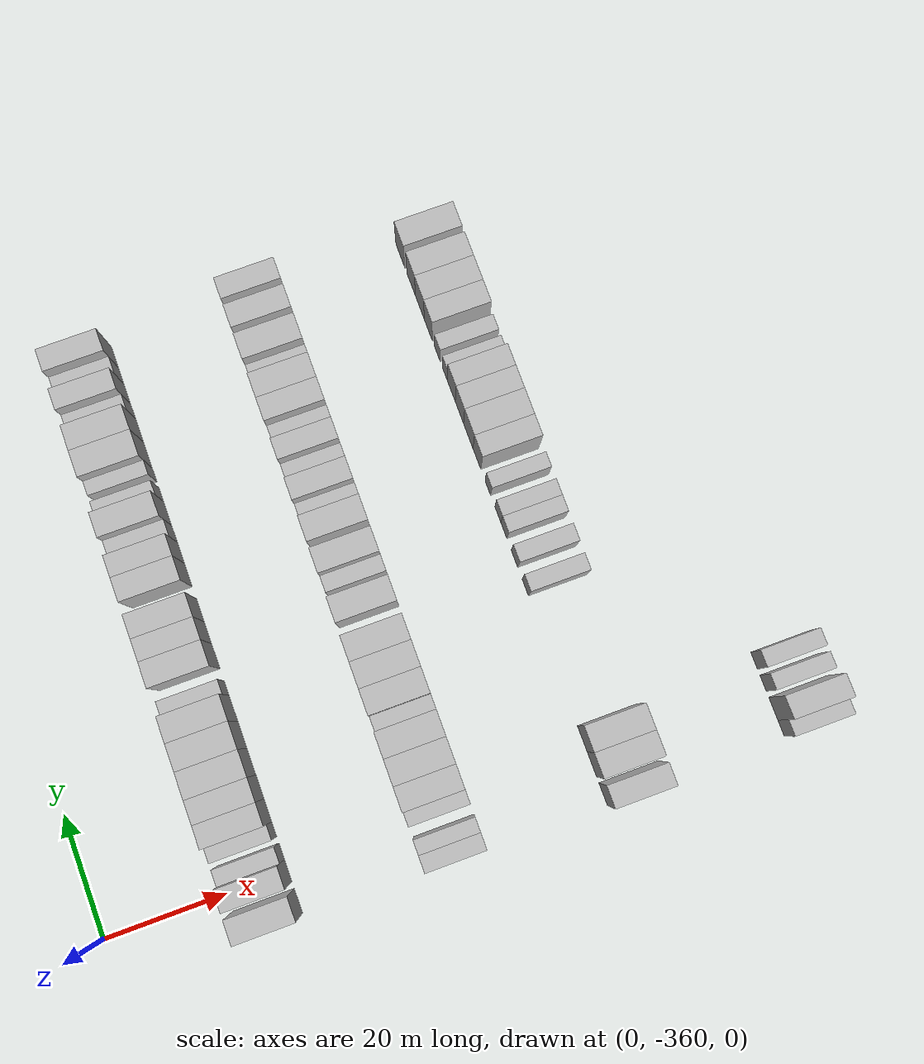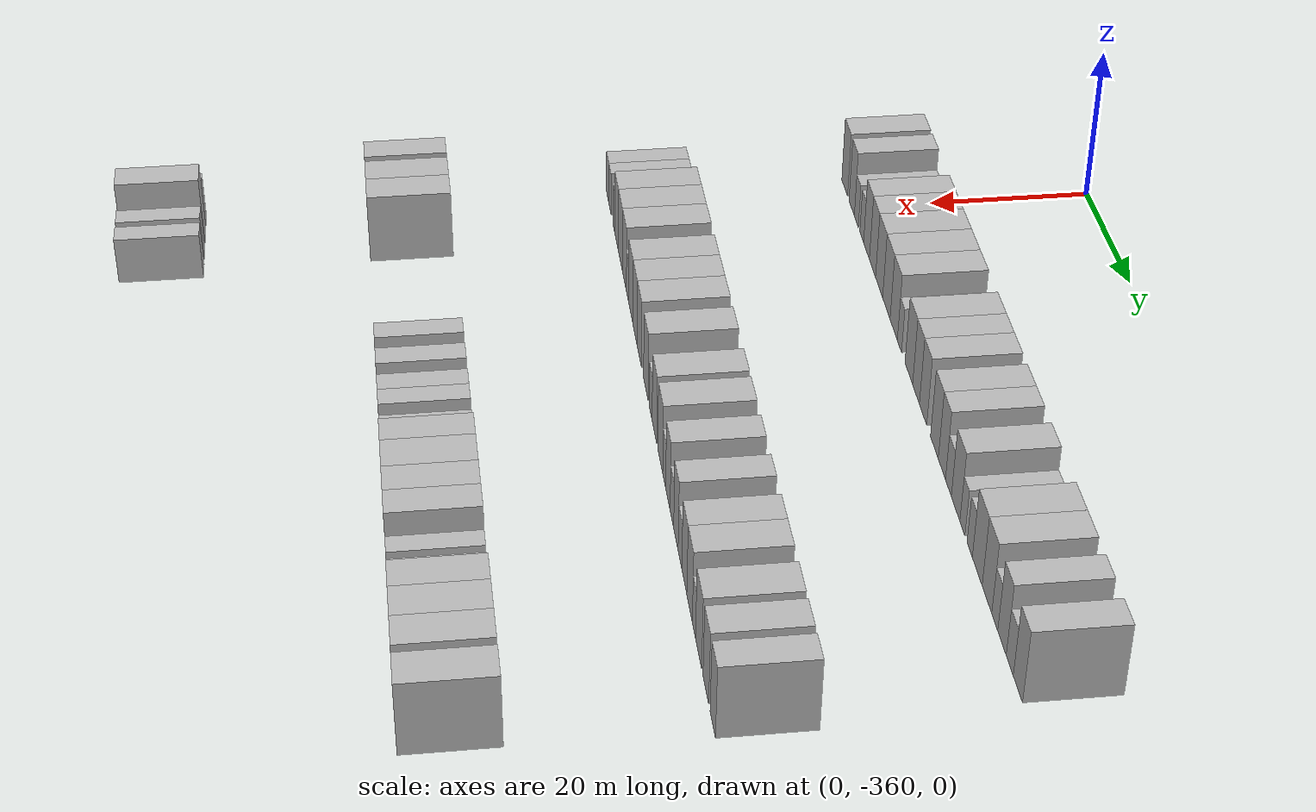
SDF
<sdf version="1.6">
 <world name="default">
  <model name="building_24">
   <static>1</static>
   <pose>25.0000 -364.7935 0 0.000000 0.000000 0.000000</pose>
   <link name="link">
    <pose>0 0 4.50 0 0 0</pose>
    <collision name="collision"><geometry><box><size>10.0000 3.9919 9.0000</size></box></geometry></collision>
    <visual name="visual">
     <cast_shadows>0</cast_shadows>
     <geometry><box><size>10.0000 3.9919 9.0000</size></box></geometry>
     <material>
      <script>
       <uri>model://HANNAS_wall/materials/scripts</uri>
       <uri>model://HANNAS_wall/materials/textures</uri>
       <name>vrc/HANNAS_wall</name>
      </script>
     </material>
    </visual>
   </link>
  </model>
  <model name="building_25">
   <static>1</static>
   <pose>25.0000 -359.9944 0 0.000000 0.000000 0.000000</pose>
   <link name="link">
    <pose>0 0 4.50 0 0 0</pose>
    <collision name="collision"><geometry><box><size>10.0000 3.6062 9.0000</size></box></geometry></collision>
    <visual name="visual">
     <cast_shadows>0</cast_shadows>
     <geometry><box><size>10.0000 3.6062 9.0000</size></box></geometry>
     <material>
      <script>
       <uri>model://HANNAS_wall/materials/scripts</uri>
       <uri>model://HANNAS_wall/materials/textures</uri>
       <name>vrc/HANNAS_wall</name>
      </script>
     </material>
    </visual>
   </link>
  </model>
  <model name="building_26">
   <static>1</static>
   <pose>25.0000 -356.8603 0 0.000000 0.000000 0.000000</pose>
   <link name="link">
    <pose>0 0 3.00 0 0 0</pose>
    <collision name="collision"><geometry><box><size>10.0000 2.6620 6.0000</size></box></geometry></collision>
    <visual name="visual">
     <cast_shadows>0</cast_shadows>
     <geometry><box><size>10.0000 2.6620 6.0000</size></box></geometry>
     <material>
      <script>
       <uri>model://HANNAS_wall/materials/scripts</uri>
       <uri>model://HANNAS_wall/materials/textures</uri>
       <name>vrc/HANNAS_wall</name>
      </script>
     </material>
    </visual>
   </link>
  </model>
  <model name="building_27">
   <static>1</static>
   <pose>25.0000 -353.3036 0 0.000000 0.000000 0.000000</pose>
   <link name="link">
    <pose>0 0 3.00 0 0 0</pose>
    <collision name="collision"><geometry><box><size>10.0000 2.4513 6.0000</size></box></geometry></collision>
    <visual name="visual">
     <cast_shadows>0</cast_shadows>
     <geometry><box><size>10.0000 2.4513 6.0000</size></box></geometry>
     <material>
      <script>
       <uri>model://HANNAS_wall/materials/scripts</uri>
       <uri>model://HANNAS_wall/materials/textures</uri>
       <name>vrc/HANNAS_wall</name>
      </script>
     </material>
    </visual>
   </link>
  </model>
  <model name="building_28">
   <static>1</static>
   <pose>25.0000 -350.2031 0 0.000000 0.000000 0.000000</pose>
   <link name="link">
    <pose>0 0 4.50 0 0 0</pose>
    <collision name="collision"><geometry><box><size>10.0000 3.7497 9.0000</size></box></geometry></collision>
    <visual name="visual">
     <cast_shadows>0</cast_shadows>
     <geometry><box><size>10.0000 3.7497 9.0000</size></box></geometry>
     <material>
      <script>
       <uri>model://HANNAS_wall/materials/scripts</uri>
       <uri>model://HANNAS_wall/materials/textures</uri>
       <name>vrc/HANNAS_wall</name>
      </script>
     </material>
    </visual>
   </link>
  </model>
  <model name="building_29">
   <static>1</static>
   <pose>25.0000 -346.3788 0 0.000000 0.000000 0.000000</pose>
   <link name="link">
    <pose>0 0 4.50 0 0 0</pose>
    <collision name="collision"><geometry><box><size>10.0000 3.8989 9.0000</size></box></geometry></collision>
    <visual name="visual">
     <cast_shadows>0</cast_shadows>
     <geometry><box><size>10.0000 3.8989 9.0000</size></box></geometry>
     <material>
      <script>
       <uri>model://HANNAS_wall/materials/scripts</uri>
       <uri>model://HANNAS_wall/materials/textures</uri>
       <name>vrc/HANNAS_wall</name>
      </script>
     </material>
    </visual>
   </link>
  </model>
  <model name="building_30">
   <static>1</static>
   <pose>25.0000 -342.2293 0 0.000000 0.000000 0.000000</pose>
   <link name="link">
    <pose>0 0 4.50 0 0 0</pose>
    <collision name="collision"><geometry><box><size>10.0000 4.4001 9.0000</size></box></geometry></collision>
    <visual name="visual">
     <cast_shadows>0</cast_shadows>
     <geometry><box><size>10.0000 4.4001 9.0000</size></box></geometry>
     <material>
      <script>
       <uri>model://HANNAS_wall/materials/scripts</uri>
       <uri>model://HANNAS_wall/materials/textures</uri>
       <name>vrc/HANNAS_wall</name>
      </script>
     </material>
    </visual>
   </link>
  </model>
  <model name="building_31">
   <static>1</static>
   <pose>25.0000 -337.7817 0 0.000000 0.000000 0.000000</pose>
   <link name="link">
    <pose>0 0 4.50 0 0 0</pose>
    <collision name="collision"><geometry><box><size>10.0000 4.4951 9.0000</size></box></geometry></collision>
    <visual name="visual">
     <cast_shadows>0</cast_shadows>
     <geometry><box><size>10.0000 4.4951 9.0000</size></box></geometry>
     <material>
      <script>
       <uri>model://HANNAS_wall/materials/scripts</uri>
       <uri>model://HANNAS_wall/materials/textures</uri>
       <name>vrc/HANNAS_wall</name>
      </script>
     </material>
    </visual>
   </link>
  </model>
  <model name="building_32">
   <static>1</static>
   <pose>25.0000 -333.3863 0 0.000000 0.000000 0.000000</pose>
   <link name="link">
    <pose>0 0 4.50 0 0 0</pose>
    <collision name="collision"><geometry><box><size>10.0000 4.2958 9.0000</size></box></geometry></collision>
    <visual name="visual">
     <cast_shadows>0</cast_shadows>
     <geometry><box><size>10.0000 4.2958 9.0000</size></box></geometry>
     <material>
      <script>
       <uri>model://HANNAS_wall/materials/scripts</uri>
       <uri>model://HANNAS_wall/materials/textures</uri>
       <name>vrc/HANNAS_wall</name>
      </script>
     </material>
    </visual>
   </link>
  </model>
  <model name="building_33">
   <static>1</static>
   <pose>25.0000 -330.0188 0 0.000000 0.000000 0.000000</pose>
   <link name="link">
    <pose>0 0 3.00 0 0 0</pose>
    <collision name="collision"><geometry><box><size>10.0000 2.4390 6.0000</size></box></geometry></collision>
    <visual name="visual">
     <cast_shadows>0</cast_shadows>
     <geometry><box><size>10.0000 2.4390 6.0000</size></box></geometry>
     <material>
      <script>
       <uri>model://HANNAS_wall/materials/scripts</uri>
       <uri>model://HANNAS_wall/materials/textures</uri>
       <name>vrc/HANNAS_wall</name>
      </script>
     </material>
    </visual>
   </link>
  </model>
  <model name="building_34">
   <static>1</static>
   <pose>25.0000 -324.6767 0 0.000000 0.000000 0.000000</pose>
   <link name="link">
    <pose>0 0 4.50 0 0 0</pose>
    <collision name="collision"><geometry><box><size>10.0000 4.2452 9.0000</size></box></geometry></collision>
    <visual name="visual">
     <cast_shadows>0</cast_shadows>
     <geometry><box><size>10.0000 4.2452 9.0000</size></box></geometry>
     <material>
      <script>
       <uri>model://HANNAS_wall/materials/scripts</uri>
       <uri>model://HANNAS_wall/materials/textures</uri>
       <name>vrc/HANNAS_wall</name>
      </script>
     </material>
    </visual>
   </link>
  </model>
  <model name="building_35">
   <static>1</static>
   <pose>25.0000 -320.6942 0 0.000000 0.000000 0.000000</pose>
   <link name="link">
    <pose>0 0 4.50 0 0 0</pose>
    <collision name="collision"><geometry><box><size>10.0000 3.7198 9.0000</size></box></geometry></collision>
    <visual name="visual">
     <cast_shadows>0</cast_shadows>
     <geometry><box><size>10.0000 3.7198 9.0000</size></box></geometry>
     <material>
      <script>
       <uri>model://HANNAS_wall/materials/scripts</uri>
       <uri>model://HANNAS_wall/materials/textures</uri>
       <name>vrc/HANNAS_wall</name>
      </script>
     </material>
    </visual>
   </link>
  </model>
  <model name="building_36">
   <static>1</static>
   <pose>25.0000 -316.8547 0 0.000000 0.000000 0.000000</pose>
   <link name="link">
    <pose>0 0 4.50 0 0 0</pose>
    <collision name="collision"><geometry><box><size>10.0000 3.9591 9.0000</size></box></geometry></collision>
    <visual name="visual">
     <cast_shadows>0</cast_shadows>
     <geometry><box><size>10.0000 3.9591 9.0000</size></box></geometry>
     <material>
      <script>
       <uri>model://HANNAS_wall/materials/scripts</uri>
       <uri>model://HANNAS_wall/materials/textures</uri>
       <name>vrc/HANNAS_wall</name>
      </script>
     </material>
    </visual>
   </link>
  </model>
  <model name="building_37">
   <static>1</static>
   <pose>25.0000 -310.8649 0 0.000000 0.000000 0.000000</pose>
   <link name="link">
    <pose>0 0 4.50 0 0 0</pose>
    <collision name="collision"><geometry><box><size>10.0000 4.0205 9.0000</size></box></geometry></collision>
    <visual name="visual">
     <cast_shadows>0</cast_shadows>
     <geometry><box><size>10.0000 4.0205 9.0000</size></box></geometry>
     <material>
      <script>
       <uri>model://HANNAS_wall/materials/scripts</uri>
       <uri>model://HANNAS_wall/materials/textures</uri>
       <name>vrc/HANNAS_wall</name>
      </script>
     </material>
    </visual>
   </link>
  </model>
  <model name="building_38">
   <static>1</static>
   <pose>25.0000 -307.0264 0 0.000000 0.000000 0.000000</pose>
   <link name="link">
    <pose>0 0 4.50 0 0 0</pose>
    <collision name="collision"><geometry><box><size>10.0000 3.6566 9.0000</size></box></geometry></collision>
    <visual name="visual">
     <cast_shadows>0</cast_shadows>
     <geometry><box><size>10.0000 3.6566 9.0000</size></box></geometry>
     <material>
      <script>
       <uri>model://HANNAS_wall/materials/scripts</uri>
       <uri>model://HANNAS_wall/materials/textures</uri>
       <name>vrc/HANNAS_wall</name>
      </script>
     </material>
    </visual>
   </link>
  </model>
  <model name="building_39">
   <static>1</static>
   <pose>25.0000 -303.7442 0 0.000000 0.000000 0.000000</pose>
   <link name="link">
    <pose>0 0 3.00 0 0 0</pose>
    <collision name="collision"><geometry><box><size>10.0000 2.9078 6.0000</size></box></geometry></collision>
    <visual name="visual">
     <cast_shadows>0</cast_shadows>
     <geometry><box><size>10.0000 2.9078 6.0000</size></box></geometry>
     <material>
      <script>
       <uri>model://HANNAS_wall/materials/scripts</uri>
       <uri>model://HANNAS_wall/materials/textures</uri>
       <name>vrc/HANNAS_wall</name>
      </script>
     </material>
    </visual>
   </link>
  </model>
  <model name="building_40">
   <static>1</static>
   <pose>25.0000 -300.1988 0 0.000000 0.000000 0.000000</pose>
   <link name="link">
    <pose>0 0 4.50 0 0 0</pose>
    <collision name="collision"><geometry><box><size>10.0000 4.1829 9.0000</size></box></geometry></collision>
    <visual name="visual">
     <cast_shadows>0</cast_shadows>
     <geometry><box><size>10.0000 4.1829 9.0000</size></box></geometry>
     <material>
      <script>
       <uri>model://HANNAS_wall/materials/scripts</uri>
       <uri>model://HANNAS_wall/materials/textures</uri>
       <name>vrc/HANNAS_wall</name>
      </script>
     </material>
    </visual>
   </link>
  </model>
  <model name="building_41">
   <static>1</static>
   <pose>25.0000 -296.9046 0 0.000000 0.000000 0.000000</pose>
   <link name="link">
    <pose>0 0 3.00 0 0 0</pose>
    <collision name="collision"><geometry><box><size>10.0000 2.4056 6.0000</size></box></geometry></collision>
    <visual name="visual">
     <cast_shadows>0</cast_shadows>
     <geometry><box><size>10.0000 2.4056 6.0000</size></box></geometry>
     <material>
      <script>
       <uri>model://HANNAS_wall/materials/scripts</uri>
       <uri>model://HANNAS_wall/materials/textures</uri>
       <name>vrc/HANNAS_wall</name>
      </script>
     </material>
    </visual>
   </link>
  </model>
  <model name="building_42">
   <static>1</static>
   <pose>25.0000 -293.4693 0 0.000000 0.000000 0.000000</pose>
   <link name="link">
    <pose>0 0 3.00 0 0 0</pose>
    <collision name="collision"><geometry><box><size>10.0000 2.4650 6.0000</size></box></geometry></collision>
    <visual name="visual">
     <cast_shadows>0</cast_shadows>
     <geometry><box><size>10.0000 2.4650 6.0000</size></box></geometry>
     <material>
      <script>
       <uri>model://HANNAS_wall/materials/scripts</uri>
       <uri>model://HANNAS_wall/materials/textures</uri>
       <name>vrc/HANNAS_wall</name>
      </script>
     </material>
    </visual>
   </link>
  </model>
  <model name="building_43">
   <static>1</static>
   <pose>25.0000 -289.9926 0 0.000000 0.000000 0.000000</pose>
   <link name="link">
    <pose>0 0 4.50 0 0 0</pose>
    <collision name="collision"><geometry><box><size>10.0000 4.4885 9.0000</size></box></geometry></collision>
    <visual name="visual">
     <cast_shadows>0</cast_shadows>
     <geometry><box><size>10.0000 4.4885 9.0000</size></box></geometry>
     <material>
      <script>
       <uri>model://HANNAS_wall/materials/scripts</uri>
       <uri>model://HANNAS_wall/materials/textures</uri>
       <name>vrc/HANNAS_wall</name>
      </script>
     </material>
    </visual>
   </link>
  </model>
  <model name="building_44">
   <static>1</static>
   <pose>25.0000 -285.6134 0 0.000000 0.000000 0.000000</pose>
   <link name="link">
    <pose>0 0 4.50 0 0 0</pose>
    <collision name="collision"><geometry><box><size>10.0000 4.2698 9.0000</size></box></geometry></collision>
    <visual name="visual">
     <cast_shadows>0</cast_shadows>
     <geometry><box><size>10.0000 4.2698 9.0000</size></box></geometry>
     <material>
      <script>
       <uri>model://HANNAS_wall/materials/scripts</uri>
       <uri>model://HANNAS_wall/materials/textures</uri>
       <name>vrc/HANNAS_wall</name>
      </script>
     </material>
    </visual>
   </link>
  </model>
  <model name="building_45">
   <static>1</static>
   <pose>25.0000 -282.1801 0 0.000000 0.000000 0.000000</pose>
   <link name="link">
    <pose>0 0 3.00 0 0 0</pose>
    <collision name="collision"><geometry><box><size>10.0000 2.5968 6.0000</size></box></geometry></collision>
    <visual name="visual">
     <cast_shadows>0</cast_shadows>
     <geometry><box><size>10.0000 2.5968 6.0000</size></box></geometry>
     <material>
      <script>
       <uri>model://HANNAS_wall/materials/scripts</uri>
       <uri>model://HANNAS_wall/materials/textures</uri>
       <name>vrc/HANNAS_wall</name>
      </script>
     </material>
    </visual>
   </link>
  </model>
  <model name="building_46">
   <static>1</static>
   <pose>25.0000 -279.0741 0 0.000000 0.000000 0.000000</pose>
   <link name="link">
    <pose>0 0 4.50 0 0 0</pose>
    <collision name="collision"><geometry><box><size>10.0000 3.6153 9.0000</size></box></geometry></collision>
    <visual name="visual">
     <cast_shadows>0</cast_shadows>
     <geometry><box><size>10.0000 3.6153 9.0000</size></box></geometry>
     <material>
      <script>
       <uri>model://HANNAS_wall/materials/scripts</uri>
       <uri>model://HANNAS_wall/materials/textures</uri>
       <name>vrc/HANNAS_wall</name>
      </script>
     </material>
    </visual>
   </link>
  </model>
  <model name="building_47">
   <static>1</static>
   <pose>25.0000 -275.7902 0 0.000000 0.000000 0.000000</pose>
   <link name="link">
    <pose>0 0 3.00 0 0 0</pose>
    <collision name="collision"><geometry><box><size>10.0000 2.9524 6.0000</size></box></geometry></collision>
    <visual name="visual">
     <cast_shadows>0</cast_shadows>
     <geometry><box><size>10.0000 2.9524 6.0000</size></box></geometry>
     <material>
      <script>
       <uri>model://HANNAS_wall/materials/scripts</uri>
       <uri>model://HANNAS_wall/materials/textures</uri>
       <name>vrc/HANNAS_wall</name>
      </script>
     </material>
    </visual>
   </link>
  </model>
  <model name="building_48">
   <static>1</static>
   <pose>25.0000 -272.4096 0 0.000000 0.000000 0.000000</pose>
   <link name="link">
    <pose>0 0 4.50 0 0 0</pose>
    <collision name="collision"><geometry><box><size>10.0000 3.8089 9.0000</size></box></geometry></collision>
    <visual name="visual">
     <cast_shadows>0</cast_shadows>
     <geometry><box><size>10.0000 3.8089 9.0000</size></box></geometry>
     <material>
      <script>
       <uri>model://HANNAS_wall/materials/scripts</uri>
       <uri>model://HANNAS_wall/materials/textures</uri>
       <name>vrc/HANNAS_wall</name>
      </script>
     </material>
    </visual>
   </link>
  </model>
  <model name="building_249">
   <static>1</static>
   <pose>55.0000 -365.6076 0 0.000000 0.000000 0.000000</pose>
   <link name="link">
    <pose>0 0 3.00 0 0 0</pose>
    <collision name="collision"><geometry><box><size>10.0000 2.8035 6.0000</size></box></geometry></collision>
    <visual name="visual">
     <cast_shadows>0</cast_shadows>
     <geometry><box><size>10.0000 2.8035 6.0000</size></box></geometry>
     <material>
      <script>
       <uri>model://HANNAS_wall/materials/scripts</uri>
       <uri>model://HANNAS_wall/materials/textures</uri>
       <name>vrc/HANNAS_wall</name>
      </script>
     </material>
    </visual>
   </link>
  </model>
  <model name="building_250">
   <static>1</static>
   <pose>55.0000 -362.9805 0 0.000000 0.000000 0.000000</pose>
   <link name="link">
    <pose>0 0 3.00 0 0 0</pose>
    <collision name="collision"><geometry><box><size>10.0000 2.4507 6.0000</size></box></geometry></collision>
    <visual name="visual">
     <cast_shadows>0</cast_shadows>
     <geometry><box><size>10.0000 2.4507 6.0000</size></box></geometry>
     <material>
      <script>
       <uri>model://HANNAS_wall/materials/scripts</uri>
       <uri>model://HANNAS_wall/materials/textures</uri>
       <name>vrc/HANNAS_wall</name>
      </script>
     </material>
    </visual>
   </link>
  </model>
  <model name="building_251">
   <static>1</static>
   <pose>55.0000 -358.5170 0 0.000000 0.000000 0.000000</pose>
   <link name="link">
    <pose>0 0 3.00 0 0 0</pose>
    <collision name="collision"><geometry><box><size>10.0000 2.4762 6.0000</size></box></geometry></collision>
    <visual name="visual">
     <cast_shadows>0</cast_shadows>
     <geometry><box><size>10.0000 2.4762 6.0000</size></box></geometry>
     <material>
      <script>
       <uri>model://HANNAS_wall/materials/scripts</uri>
       <uri>model://HANNAS_wall/materials/textures</uri>
       <name>vrc/HANNAS_wall</name>
      </script>
     </material>
    </visual>
   </link>
  </model>
  <model name="building_252">
   <static>1</static>
   <pose>55.0000 -355.2597 0 0.000000 0.000000 0.000000</pose>
   <link name="link">
    <pose>0 0 4.50 0 0 0</pose>
    <collision name="collision"><geometry><box><size>10.0000 4.0384 9.0000</size></box></geometry></collision>
    <visual name="visual">
     <cast_shadows>0</cast_shadows>
     <geometry><box><size>10.0000 4.0384 9.0000</size></box></geometry>
     <material>
      <script>
       <uri>model://HANNAS_wall/materials/scripts</uri>
       <uri>model://HANNAS_wall/materials/textures</uri>
       <name>vrc/HANNAS_wall</name>
      </script>
     </material>
    </visual>
   </link>
  </model>
  <model name="building_253">
   <static>1</static>
   <pose>55.0000 -351.0773 0 0.000000 0.000000 0.000000</pose>
   <link name="link">
    <pose>0 0 4.50 0 0 0</pose>
    <collision name="collision"><geometry><box><size>10.0000 4.3264 9.0000</size></box></geometry></collision>
    <visual name="visual">
     <cast_shadows>0</cast_shadows>
     <geometry><box><size>10.0000 4.3264 9.0000</size></box></geometry>
     <material>
      <script>
       <uri>model://HANNAS_wall/materials/scripts</uri>
       <uri>model://HANNAS_wall/materials/textures</uri>
       <name>vrc/HANNAS_wall</name>
      </script>
     </material>
    </visual>
   </link>
  </model>
  <model name="building_254">
   <static>1</static>
   <pose>55.0000 -346.7561 0 0.000000 0.000000 0.000000</pose>
   <link name="link">
    <pose>0 0 4.50 0 0 0</pose>
    <collision name="collision"><geometry><box><size>10.0000 4.3161 9.0000</size></box></geometry></collision>
    <visual name="visual">
     <cast_shadows>0</cast_shadows>
     <geometry><box><size>10.0000 4.3161 9.0000</size></box></geometry>
     <material>
      <script>
       <uri>model://HANNAS_wall/materials/scripts</uri>
       <uri>model://HANNAS_wall/materials/textures</uri>
       <name>vrc/HANNAS_wall</name>
      </script>
     </material>
    </visual>
   </link>
  </model>
  <model name="building_255">
   <static>1</static>
   <pose>55.0000 -343.3410 0 0.000000 0.000000 0.000000</pose>
   <link name="link">
    <pose>0 0 3.00 0 0 0</pose>
    <collision name="collision"><geometry><box><size>10.0000 2.5142 6.0000</size></box></geometry></collision>
    <visual name="visual">
     <cast_shadows>0</cast_shadows>
     <geometry><box><size>10.0000 2.5142 6.0000</size></box></geometry>
     <material>
      <script>
       <uri>model://HANNAS_wall/materials/scripts</uri>
       <uri>model://HANNAS_wall/materials/textures</uri>
       <name>vrc/HANNAS_wall</name>
      </script>
     </material>
    </visual>
   </link>
  </model>
  <model name="building_256">
   <static>1</static>
   <pose>55.0000 -339.9359 0 0.000000 0.000000 0.000000</pose>
   <link name="link">
    <pose>0 0 4.50 0 0 0</pose>
    <collision name="collision"><geometry><box><size>10.0000 4.2960 9.0000</size></box></geometry></collision>
    <visual name="visual">
     <cast_shadows>0</cast_shadows>
     <geometry><box><size>10.0000 4.2960 9.0000</size></box></geometry>
     <material>
      <script>
       <uri>model://HANNAS_wall/materials/scripts</uri>
       <uri>model://HANNAS_wall/materials/textures</uri>
       <name>vrc/HANNAS_wall</name>
      </script>
     </material>
    </visual>
   </link>
  </model>
  <model name="building_257">
   <static>1</static>
   <pose>55.0000 -335.6209 0 0.000000 0.000000 0.000000</pose>
   <link name="link">
    <pose>0 0 4.50 0 0 0</pose>
    <collision name="collision"><geometry><box><size>10.0000 4.3340 9.0000</size></box></geometry></collision>
    <visual name="visual">
     <cast_shadows>0</cast_shadows>
     <geometry><box><size>10.0000 4.3340 9.0000</size></box></geometry>
     <material>
      <script>
       <uri>model://HANNAS_wall/materials/scripts</uri>
       <uri>model://HANNAS_wall/materials/textures</uri>
       <name>vrc/HANNAS_wall</name>
      </script>
     </material>
    </visual>
   </link>
  </model>
  <model name="building_258">
   <static>1</static>
   <pose>55.0000 -331.3107 0 0.000000 0.000000 0.000000</pose>
   <link name="link">
    <pose>0 0 4.50 0 0 0</pose>
    <collision name="collision"><geometry><box><size>10.0000 4.2864 9.0000</size></box></geometry></collision>
    <visual name="visual">
     <cast_shadows>0</cast_shadows>
     <geometry><box><size>10.0000 4.2864 9.0000</size></box></geometry>
     <material>
      <script>
       <uri>model://HANNAS_wall/materials/scripts</uri>
       <uri>model://HANNAS_wall/materials/textures</uri>
       <name>vrc/HANNAS_wall</name>
      </script>
     </material>
    </visual>
   </link>
  </model>
  <model name="building_259">
   <static>1</static>
   <pose>55.0000 -325.0240 0 0.000000 0.000000 0.000000</pose>
   <link name="link">
    <pose>0 0 4.50 0 0 0</pose>
    <collision name="collision"><geometry><box><size>10.0000 4.2869 9.0000</size></box></geometry></collision>
    <visual name="visual">
     <cast_shadows>0</cast_shadows>
     <geometry><box><size>10.0000 4.2869 9.0000</size></box></geometry>
     <material>
      <script>
       <uri>model://HANNAS_wall/materials/scripts</uri>
       <uri>model://HANNAS_wall/materials/textures</uri>
       <name>vrc/HANNAS_wall</name>
      </script>
     </material>
    </visual>
   </link>
  </model>
  <model name="building_260">
   <static>1</static>
   <pose>55.0000 -320.4824 0 0.000000 0.000000 0.000000</pose>
   <link name="link">
    <pose>0 0 3.00 0 0 0</pose>
    <collision name="collision"><geometry><box><size>10.0000 2.7964 6.0000</size></box></geometry></collision>
    <visual name="visual">
     <cast_shadows>0</cast_shadows>
     <geometry><box><size>10.0000 2.7964 6.0000</size></box></geometry>
     <material>
      <script>
       <uri>model://HANNAS_wall/materials/scripts</uri>
       <uri>model://HANNAS_wall/materials/textures</uri>
       <name>vrc/HANNAS_wall</name>
      </script>
     </material>
    </visual>
   </link>
  </model>
  <model name="building_261">
   <static>1</static>
   <pose>55.0000 -316.9794 0 0.000000 0.000000 0.000000</pose>
   <link name="link">
    <pose>0 0 4.50 0 0 0</pose>
    <collision name="collision"><geometry><box><size>10.0000 4.2096 9.0000</size></box></geometry></collision>
    <visual name="visual">
     <cast_shadows>0</cast_shadows>
     <geometry><box><size>10.0000 4.2096 9.0000</size></box></geometry>
     <material>
      <script>
       <uri>model://HANNAS_wall/materials/scripts</uri>
       <uri>model://HANNAS_wall/materials/textures</uri>
       <name>vrc/HANNAS_wall</name>
      </script>
     </material>
    </visual>
   </link>
  </model>
  <model name="building_262">
   <static>1</static>
   <pose>55.0000 -311.7153 0 0.000000 0.000000 0.000000</pose>
   <link name="link">
    <pose>0 0 4.50 0 0 0</pose>
    <collision name="collision"><geometry><box><size>10.0000 4.3186 9.0000</size></box></geometry></collision>
    <visual name="visual">
     <cast_shadows>0</cast_shadows>
     <geometry><box><size>10.0000 4.3186 9.0000</size></box></geometry>
     <material>
      <script>
       <uri>model://HANNAS_wall/materials/scripts</uri>
       <uri>model://HANNAS_wall/materials/textures</uri>
       <name>vrc/HANNAS_wall</name>
      </script>
     </material>
    </visual>
   </link>
  </model>
  <model name="building_263">
   <static>1</static>
   <pose>55.0000 -308.2706 0 0.000000 0.000000 0.000000</pose>
   <link name="link">
    <pose>0 0 3.00 0 0 0</pose>
    <collision name="collision"><geometry><box><size>10.0000 2.5708 6.0000</size></box></geometry></collision>
    <visual name="visual">
     <cast_shadows>0</cast_shadows>
     <geometry><box><size>10.0000 2.5708 6.0000</size></box></geometry>
     <material>
      <script>
       <uri>model://HANNAS_wall/materials/scripts</uri>
       <uri>model://HANNAS_wall/materials/textures</uri>
       <name>vrc/HANNAS_wall</name>
      </script>
     </material>
    </visual>
   </link>
  </model>
  <model name="building_264">
   <static>1</static>
   <pose>55.0000 -305.0949 0 0.000000 0.000000 0.000000</pose>
   <link name="link">
    <pose>0 0 4.50 0 0 0</pose>
    <collision name="collision"><geometry><box><size>10.0000 3.7807 9.0000</size></box></geometry></collision>
    <visual name="visual">
     <cast_shadows>0</cast_shadows>
     <geometry><box><size>10.0000 3.7807 9.0000</size></box></geometry>
     <material>
      <script>
       <uri>model://HANNAS_wall/materials/scripts</uri>
       <uri>model://HANNAS_wall/materials/textures</uri>
       <name>vrc/HANNAS_wall</name>
      </script>
     </material>
    </visual>
   </link>
  </model>
  <model name="building_265">
   <static>1</static>
   <pose>55.0000 -301.7079 0 0.000000 0.000000 0.000000</pose>
   <link name="link">
    <pose>0 0 3.00 0 0 0</pose>
    <collision name="collision"><geometry><box><size>10.0000 2.9934 6.0000</size></box></geometry></collision>
    <visual name="visual">
     <cast_shadows>0</cast_shadows>
     <geometry><box><size>10.0000 2.9934 6.0000</size></box></geometry>
     <material>
      <script>
       <uri>model://HANNAS_wall/materials/scripts</uri>
       <uri>model://HANNAS_wall/materials/textures</uri>
       <name>vrc/HANNAS_wall</name>
      </script>
     </material>
    </visual>
   </link>
  </model>
  <model name="building_266">
   <static>1</static>
   <pose>55.0000 -298.3935 0 0.000000 0.000000 0.000000</pose>
   <link name="link">
    <pose>0 0 4.50 0 0 0</pose>
    <collision name="collision"><geometry><box><size>10.0000 3.6354 9.0000</size></box></geometry></collision>
    <visual name="visual">
     <cast_shadows>0</cast_shadows>
     <geometry><box><size>10.0000 3.6354 9.0000</size></box></geometry>
     <material>
      <script>
       <uri>model://HANNAS_wall/materials/scripts</uri>
       <uri>model://HANNAS_wall/materials/textures</uri>
       <name>vrc/HANNAS_wall</name>
      </script>
     </material>
    </visual>
   </link>
  </model>
  <model name="building_267">
   <static>1</static>
   <pose>55.0000 -295.1136 0 0.000000 0.000000 0.000000</pose>
   <link name="link">
    <pose>0 0 3.00 0 0 0</pose>
    <collision name="collision"><geometry><box><size>10.0000 2.9244 6.0000</size></box></geometry></collision>
    <visual name="visual">
     <cast_shadows>0</cast_shadows>
     <geometry><box><size>10.0000 2.9244 6.0000</size></box></geometry>
     <material>
      <script>
       <uri>model://HANNAS_wall/materials/scripts</uri>
       <uri>model://HANNAS_wall/materials/textures</uri>
       <name>vrc/HANNAS_wall</name>
      </script>
     </material>
    </visual>
   </link>
  </model>
  <model name="building_268">
   <static>1</static>
   <pose>55.0000 -291.6722 0 0.000000 0.000000 0.000000</pose>
   <link name="link">
    <pose>0 0 4.50 0 0 0</pose>
    <collision name="collision"><geometry><box><size>10.0000 3.9584 9.0000</size></box></geometry></collision>
    <visual name="visual">
     <cast_shadows>0</cast_shadows>
     <geometry><box><size>10.0000 3.9584 9.0000</size></box></geometry>
     <material>
      <script>
       <uri>model://HANNAS_wall/materials/scripts</uri>
       <uri>model://HANNAS_wall/materials/textures</uri>
       <name>vrc/HANNAS_wall</name>
      </script>
     </material>
    </visual>
   </link>
  </model>
  <model name="building_269">
   <static>1</static>
   <pose>55.0000 -287.5960 0 0.000000 0.000000 0.000000</pose>
   <link name="link">
    <pose>0 0 4.50 0 0 0</pose>
    <collision name="collision"><geometry><box><size>10.0000 4.1940 9.0000</size></box></geometry></collision>
    <visual name="visual">
     <cast_shadows>0</cast_shadows>
     <geometry><box><size>10.0000 4.1940 9.0000</size></box></geometry>
     <material>
      <script>
       <uri>model://HANNAS_wall/materials/scripts</uri>
       <uri>model://HANNAS_wall/materials/textures</uri>
       <name>vrc/HANNAS_wall</name>
      </script>
     </material>
    </visual>
   </link>
  </model>
  <model name="building_270">
   <static>1</static>
   <pose>55.0000 -284.2962 0 0.000000 0.000000 0.000000</pose>
   <link name="link">
    <pose>0 0 3.00 0 0 0</pose>
    <collision name="collision"><geometry><box><size>10.0000 2.4057 6.0000</size></box></geometry></collision>
    <visual name="visual">
     <cast_shadows>0</cast_shadows>
     <geometry><box><size>10.0000 2.4057 6.0000</size></box></geometry>
     <material>
      <script>
       <uri>model://HANNAS_wall/materials/scripts</uri>
       <uri>model://HANNAS_wall/materials/textures</uri>
       <name>vrc/HANNAS_wall</name>
      </script>
     </material>
    </visual>
   </link>
  </model>
  <model name="building_271">
   <static>1</static>
   <pose>55.0000 -280.8623 0 0.000000 0.000000 0.000000</pose>
   <link name="link">
    <pose>0 0 4.50 0 0 0</pose>
    <collision name="collision"><geometry><box><size>10.0000 4.4620 9.0000</size></box></geometry></collision>
    <visual name="visual">
     <cast_shadows>0</cast_shadows>
     <geometry><box><size>10.0000 4.4620 9.0000</size></box></geometry>
     <material>
      <script>
       <uri>model://HANNAS_wall/materials/scripts</uri>
       <uri>model://HANNAS_wall/materials/textures</uri>
       <name>vrc/HANNAS_wall</name>
      </script>
     </material>
    </visual>
   </link>
  </model>
  <model name="building_272">
   <static>1</static>
   <pose>55.0000 -275.6282 0 0.000000 0.000000 0.000000</pose>
   <link name="link">
    <pose>0 0 4.50 0 0 0</pose>
    <collision name="collision"><geometry><box><size>10.0000 4.0062 9.0000</size></box></geometry></collision>
    <visual name="visual">
     <cast_shadows>0</cast_shadows>
     <geometry><box><size>10.0000 4.0062 9.0000</size></box></geometry>
     <material>
      <script>
       <uri>model://HANNAS_wall/materials/scripts</uri>
       <uri>model://HANNAS_wall/materials/textures</uri>
       <name>vrc/HANNAS_wall</name>
      </script>
     </material>
    </visual>
   </link>
  </model>
  <model name="building_273">
   <static>1</static>
   <pose>55.0000 -270.7883 0 0.000000 0.000000 0.000000</pose>
   <link name="link">
    <pose>0 0 4.50 0 0 0</pose>
    <collision name="collision"><geometry><box><size>10.0000 3.6734 9.0000</size></box></geometry></collision>
    <visual name="visual">
     <cast_shadows>0</cast_shadows>
     <geometry><box><size>10.0000 3.6734 9.0000</size></box></geometry>
     <material>
      <script>
       <uri>model://HANNAS_wall/materials/scripts</uri>
       <uri>model://HANNAS_wall/materials/textures</uri>
       <name>vrc/HANNAS_wall</name>
      </script>
     </material>
    </visual>
   </link>
  </model>
  <model name="building_491">
   <static>1</static>
   <pose>85.0000 -365.7836 0 0.000000 0.000000 0.000000</pose>
   <link name="link">
    <pose>0 0 4.50 0 0 0</pose>
    <collision name="collision"><geometry><box><size>10.0000 3.6781 9.0000</size></box></geometry></collision>
    <visual name="visual">
     <cast_shadows>0</cast_shadows>
     <geometry><box><size>10.0000 3.6781 9.0000</size></box></geometry>
     <material>
      <script>
       <uri>model://HANNAS_wall/materials/scripts</uri>
       <uri>model://HANNAS_wall/materials/textures</uri>
       <name>vrc/HANNAS_wall</name>
      </script>
     </material>
    </visual>
   </link>
  </model>
  <model name="building_492">
   <static>1</static>
   <pose>85.0000 -360.8789 0 0.000000 0.000000 0.000000</pose>
   <link name="link">
    <pose>0 0 4.50 0 0 0</pose>
    <collision name="collision"><geometry><box><size>10.0000 4.1314 9.0000</size></box></geometry></collision>
    <visual name="visual">
     <cast_shadows>0</cast_shadows>
     <geometry><box><size>10.0000 4.1314 9.0000</size></box></geometry>
     <material>
      <script>
       <uri>model://HANNAS_wall/materials/scripts</uri>
       <uri>model://HANNAS_wall/materials/textures</uri>
       <name>vrc/HANNAS_wall</name>
      </script>
     </material>
    </visual>
   </link>
  </model>
  <model name="building_493">
   <static>1</static>
   <pose>85.0000 -356.6734 0 0.000000 0.000000 0.000000</pose>
   <link name="link">
    <pose>0 0 4.50 0 0 0</pose>
    <collision name="collision"><geometry><box><size>10.0000 4.2796 9.0000</size></box></geometry></collision>
    <visual name="visual">
     <cast_shadows>0</cast_shadows>
     <geometry><box><size>10.0000 4.2796 9.0000</size></box></geometry>
     <material>
      <script>
       <uri>model://HANNAS_wall/materials/scripts</uri>
       <uri>model://HANNAS_wall/materials/textures</uri>
       <name>vrc/HANNAS_wall</name>
      </script>
     </material>
    </visual>
   </link>
  </model>
  <model name="building_494">
   <static>1</static>
   <pose>85.0000 -331.2121 0 0.000000 0.000000 0.000000</pose>
   <link name="link">
    <pose>0 0 3.00 0 0 0</pose>
    <collision name="collision"><geometry><box><size>10.0000 2.8810 6.0000</size></box></geometry></collision>
    <visual name="visual">
     <cast_shadows>0</cast_shadows>
     <geometry><box><size>10.0000 2.8810 6.0000</size></box></geometry>
     <material>
      <script>
       <uri>model://HANNAS_wall/materials/scripts</uri>
       <uri>model://HANNAS_wall/materials/textures</uri>
       <name>vrc/HANNAS_wall</name>
      </script>
     </material>
    </visual>
   </link>
  </model>
  <model name="building_495">
   <static>1</static>
   <pose>85.0000 -326.2888 0 0.000000 0.000000 0.000000</pose>
   <link name="link">
    <pose>0 0 3.00 0 0 0</pose>
    <collision name="collision"><geometry><box><size>10.0000 2.9656 6.0000</size></box></geometry></collision>
    <visual name="visual">
     <cast_shadows>0</cast_shadows>
     <geometry><box><size>10.0000 2.9656 6.0000</size></box></geometry>
     <material>
      <script>
       <uri>model://HANNAS_wall/materials/scripts</uri>
       <uri>model://HANNAS_wall/materials/textures</uri>
       <name>vrc/HANNAS_wall</name>
      </script>
     </material>
    </visual>
   </link>
  </model>
  <model name="building_496">
   <static>1</static>
   <pose>85.0000 -321.4121 0 0.000000 0.000000 0.000000</pose>
   <link name="link">
    <pose>0 0 3.00 0 0 0</pose>
    <collision name="collision"><geometry><box><size>10.0000 2.7876 6.0000</size></box></geometry></collision>
    <visual name="visual">
     <cast_shadows>0</cast_shadows>
     <geometry><box><size>10.0000 2.7876 6.0000</size></box></geometry>
     <material>
      <script>
       <uri>model://HANNAS_wall/materials/scripts</uri>
       <uri>model://HANNAS_wall/materials/textures</uri>
       <name>vrc/HANNAS_wall</name>
      </script>
     </material>
    </visual>
   </link>
  </model>
  <model name="building_497">
   <static>1</static>
   <pose>85.0000 -318.6414 0 0.000000 0.000000 0.000000</pose>
   <link name="link">
    <pose>0 0 3.00 0 0 0</pose>
    <collision name="collision"><geometry><box><size>10.0000 2.7538 6.0000</size></box></geometry></collision>
    <visual name="visual">
     <cast_shadows>0</cast_shadows>
     <geometry><box><size>10.0000 2.7538 6.0000</size></box></geometry>
     <material>
      <script>
       <uri>model://HANNAS_wall/materials/scripts</uri>
       <uri>model://HANNAS_wall/materials/textures</uri>
       <name>vrc/HANNAS_wall</name>
      </script>
     </material>
    </visual>
   </link>
  </model>
  <model name="building_498">
   <static>1</static>
   <pose>85.0000 -313.9739 0 0.000000 0.000000 0.000000</pose>
   <link name="link">
    <pose>0 0 3.00 0 0 0</pose>
    <collision name="collision"><geometry><box><size>10.0000 2.5813 6.0000</size></box></geometry></collision>
    <visual name="visual">
     <cast_shadows>0</cast_shadows>
     <geometry><box><size>10.0000 2.5813 6.0000</size></box></geometry>
     <material>
      <script>
       <uri>model://HANNAS_wall/materials/scripts</uri>
       <uri>model://HANNAS_wall/materials/textures</uri>
       <name>vrc/HANNAS_wall</name>
      </script>
     </material>
    </visual>
   </link>
  </model>
  <model name="building_499">
   <static>1</static>
   <pose>85.0000 -308.8496 0 0.000000 0.000000 0.000000</pose>
   <link name="link">
    <pose>0 0 4.50 0 0 0</pose>
    <collision name="collision"><geometry><box><size>10.0000 3.6672 9.0000</size></box></geometry></collision>
    <visual name="visual">
     <cast_shadows>0</cast_shadows>
     <geometry><box><size>10.0000 3.6672 9.0000</size></box></geometry>
     <material>
      <script>
       <uri>model://HANNAS_wall/materials/scripts</uri>
       <uri>model://HANNAS_wall/materials/textures</uri>
       <name>vrc/HANNAS_wall</name>
      </script>
     </material>
    </visual>
   </link>
  </model>
  <model name="building_500">
   <static>1</static>
   <pose>85.0000 -304.7894 0 0.000000 0.000000 0.000000</pose>
   <link name="link">
    <pose>0 0 4.50 0 0 0</pose>
    <collision name="collision"><geometry><box><size>10.0000 4.4532 9.0000</size></box></geometry></collision>
    <visual name="visual">
     <cast_shadows>0</cast_shadows>
     <geometry><box><size>10.0000 4.4532 9.0000</size></box></geometry>
     <material>
      <script>
       <uri>model://HANNAS_wall/materials/scripts</uri>
       <uri>model://HANNAS_wall/materials/textures</uri>
       <name>vrc/HANNAS_wall</name>
      </script>
     </material>
    </visual>
   </link>
  </model>
  <model name="building_501">
   <static>1</static>
   <pose>85.0000 -300.6113 0 0.000000 0.000000 0.000000</pose>
   <link name="link">
    <pose>0 0 4.50 0 0 0</pose>
    <collision name="collision"><geometry><box><size>10.0000 3.9031 9.0000</size></box></geometry></collision>
    <visual name="visual">
     <cast_shadows>0</cast_shadows>
     <geometry><box><size>10.0000 3.9031 9.0000</size></box></geometry>
     <material>
      <script>
       <uri>model://HANNAS_wall/materials/scripts</uri>
       <uri>model://HANNAS_wall/materials/textures</uri>
       <name>vrc/HANNAS_wall</name>
      </script>
     </material>
    </visual>
   </link>
  </model>
  <model name="building_502">
   <static>1</static>
   <pose>85.0000 -296.7953 0 0.000000 0.000000 0.000000</pose>
   <link name="link">
    <pose>0 0 4.50 0 0 0</pose>
    <collision name="collision"><geometry><box><size>10.0000 3.7289 9.0000</size></box></geometry></collision>
    <visual name="visual">
     <cast_shadows>0</cast_shadows>
     <geometry><box><size>10.0000 3.7289 9.0000</size></box></geometry>
     <material>
      <script>
       <uri>model://HANNAS_wall/materials/scripts</uri>
       <uri>model://HANNAS_wall/materials/textures</uri>
       <name>vrc/HANNAS_wall</name>
      </script>
     </material>
    </visual>
   </link>
  </model>
  <model name="building_503">
   <static>1</static>
   <pose>85.0000 -293.6853 0 0.000000 0.000000 0.000000</pose>
   <link name="link">
    <pose>0 0 3.00 0 0 0</pose>
    <collision name="collision"><geometry><box><size>10.0000 2.4910 6.0000</size></box></geometry></collision>
    <visual name="visual">
     <cast_shadows>0</cast_shadows>
     <geometry><box><size>10.0000 2.4910 6.0000</size></box></geometry>
     <material>
      <script>
       <uri>model://HANNAS_wall/materials/scripts</uri>
       <uri>model://HANNAS_wall/materials/textures</uri>
       <name>vrc/HANNAS_wall</name>
      </script>
     </material>
    </visual>
   </link>
  </model>
  <model name="building_504">
   <static>1</static>
   <pose>85.0000 -290.0694 0 0.000000 0.000000 0.000000</pose>
   <link name="link">
    <pose>0 0 3.00 0 0 0</pose>
    <collision name="collision"><geometry><box><size>10.0000 2.7408 6.0000</size></box></geometry></collision>
    <visual name="visual">
     <cast_shadows>0</cast_shadows>
     <geometry><box><size>10.0000 2.7408 6.0000</size></box></geometry>
     <material>
      <script>
       <uri>model://HANNAS_wall/materials/scripts</uri>
       <uri>model://HANNAS_wall/materials/textures</uri>
       <name>vrc/HANNAS_wall</name>
      </script>
     </material>
    </visual>
   </link>
  </model>
  <model name="building_505">
   <static>1</static>
   <pose>85.0000 -285.7379 0 0.000000 0.000000 0.000000</pose>
   <link name="link">
    <pose>0 0 4.50 0 0 0</pose>
    <collision name="collision"><geometry><box><size>10.0000 3.9223 9.0000</size></box></geometry></collision>
    <visual name="visual">
     <cast_shadows>0</cast_shadows>
     <geometry><box><size>10.0000 3.9223 9.0000</size></box></geometry>
     <material>
      <script>
       <uri>model://HANNAS_wall/materials/scripts</uri>
       <uri>model://HANNAS_wall/materials/textures</uri>
       <name>vrc/HANNAS_wall</name>
      </script>
     </material>
    </visual>
   </link>
  </model>
  <model name="building_506">
   <static>1</static>
   <pose>85.0000 -281.6392 0 0.000000 0.000000 0.000000</pose>
   <link name="link">
    <pose>0 0 4.50 0 0 0</pose>
    <collision name="collision"><geometry><box><size>10.0000 4.2751 9.0000</size></box></geometry></collision>
    <visual name="visual">
     <cast_shadows>0</cast_shadows>
     <geometry><box><size>10.0000 4.2751 9.0000</size></box></geometry>
     <material>
      <script>
       <uri>model://HANNAS_wall/materials/scripts</uri>
       <uri>model://HANNAS_wall/materials/textures</uri>
       <name>vrc/HANNAS_wall</name>
      </script>
     </material>
    </visual>
   </link>
  </model>
  <model name="building_507">
   <static>1</static>
   <pose>85.0000 -277.4133 0 0.000000 0.000000 0.000000</pose>
   <link name="link">
    <pose>0 0 4.50 0 0 0</pose>
    <collision name="collision"><geometry><box><size>10.0000 4.1768 9.0000</size></box></geometry></collision>
    <visual name="visual">
     <cast_shadows>0</cast_shadows>
     <geometry><box><size>10.0000 4.1768 9.0000</size></box></geometry>
     <material>
      <script>
       <uri>model://HANNAS_wall/materials/scripts</uri>
       <uri>model://HANNAS_wall/materials/textures</uri>
       <name>vrc/HANNAS_wall</name>
      </script>
     </material>
    </visual>
   </link>
  </model>
  <model name="building_508">
   <static>1</static>
   <pose>85.0000 -272.1390 0 0.000000 0.000000 0.000000</pose>
   <link name="link">
    <pose>0 0 4.50 0 0 0</pose>
    <collision name="collision"><geometry><box><size>10.0000 4.3716 9.0000</size></box></geometry></collision>
    <visual name="visual">
     <cast_shadows>0</cast_shadows>
     <geometry><box><size>10.0000 4.3716 9.0000</size></box></geometry>
     <material>
      <script>
       <uri>model://HANNAS_wall/materials/scripts</uri>
       <uri>model://HANNAS_wall/materials/textures</uri>
       <name>vrc/HANNAS_wall</name>
      </script>
     </material>
    </visual>
   </link>
  </model>
  <model name="building_702">
   <static>1</static>
   <pose>115.0000 -365.8581 0 0.000000 0.000000 0.000000</pose>
   <link name="link">
    <pose>0 0 3.00 0 0 0</pose>
    <collision name="collision"><geometry><box><size>10.0000 2.6920 6.0000</size></box></geometry></collision>
    <visual name="visual">
     <cast_shadows>0</cast_shadows>
     <geometry><box><size>10.0000 2.6920 6.0000</size></box></geometry>
     <material>
      <script>
       <uri>model://HANNAS_wall/materials/scripts</uri>
       <uri>model://HANNAS_wall/materials/textures</uri>
       <name>vrc/HANNAS_wall</name>
      </script>
     </material>
    </visual>
   </link>
  </model>
  <model name="building_703">
   <static>1</static>
   <pose>115.0000 -362.6155 0 0.000000 0.000000 0.000000</pose>
   <link name="link">
    <pose>0 0 4.50 0 0 0</pose>
    <collision name="collision"><geometry><box><size>10.0000 3.7933 9.0000</size></box></geometry></collision>
    <visual name="visual">
     <cast_shadows>0</cast_shadows>
     <geometry><box><size>10.0000 3.7933 9.0000</size></box></geometry>
     <material>
      <script>
       <uri>model://HANNAS_wall/materials/scripts</uri>
       <uri>model://HANNAS_wall/materials/textures</uri>
       <name>vrc/HANNAS_wall</name>
      </script>
     </material>
    </visual>
   </link>
  </model>
  <model name="building_704">
   <static>1</static>
   <pose>115.0000 -358.3720 0 0.000000 0.000000 0.000000</pose>
   <link name="link">
    <pose>0 0 3.00 0 0 0</pose>
    <collision name="collision"><geometry><box><size>10.0000 2.6936 6.0000</size></box></geometry></collision>
    <visual name="visual">
     <cast_shadows>0</cast_shadows>
     <geometry><box><size>10.0000 2.6936 6.0000</size></box></geometry>
     <material>
      <script>
       <uri>model://HANNAS_wall/materials/scripts</uri>
       <uri>model://HANNAS_wall/materials/textures</uri>
       <name>vrc/HANNAS_wall</name>
      </script>
     </material>
    </visual>
   </link>
  </model>
  <model name="building_705">
   <static>1</static>
   <pose>115.0000 -354.5904 0 0.000000 0.000000 0.000000</pose>
   <link name="link">
    <pose>0 0 3.00 0 0 0</pose>
    <collision name="collision"><geometry><box><size>10.0000 2.8698 6.0000</size></box></geometry></collision>
    <visual name="visual">
     <cast_shadows>0</cast_shadows>
     <geometry><box><size>10.0000 2.8698 6.0000</size></box></geometry>
     <material>
      <script>
       <uri>model://HANNAS_wall/materials/scripts</uri>
       <uri>model://HANNAS_wall/materials/textures</uri>
       <name>vrc/HANNAS_wall</name>
      </script>
     </material>
    </visual>
   </link>
  </model>
 </world>
</sdf>
